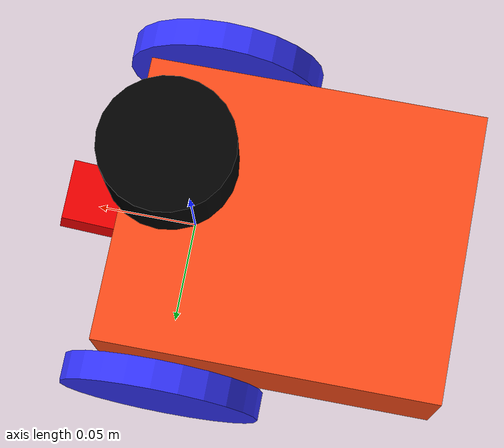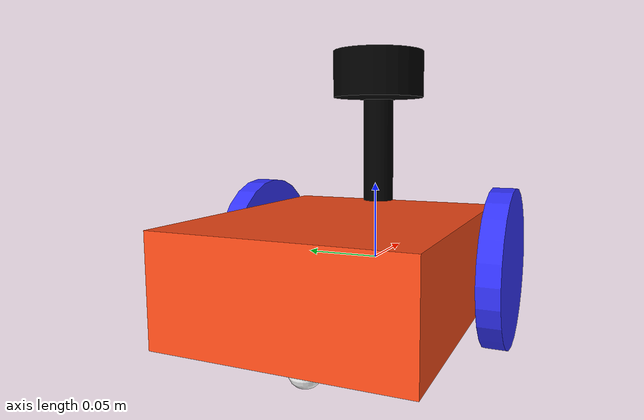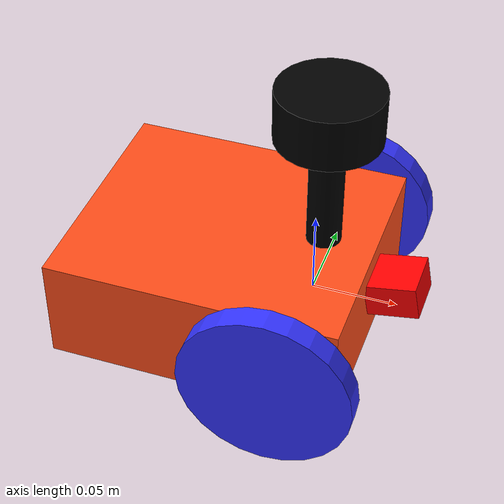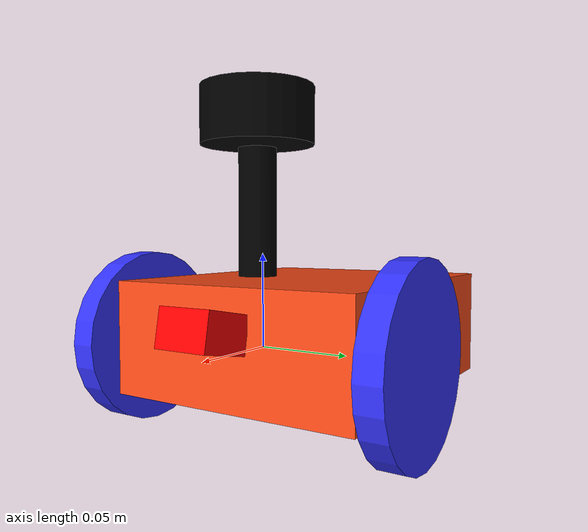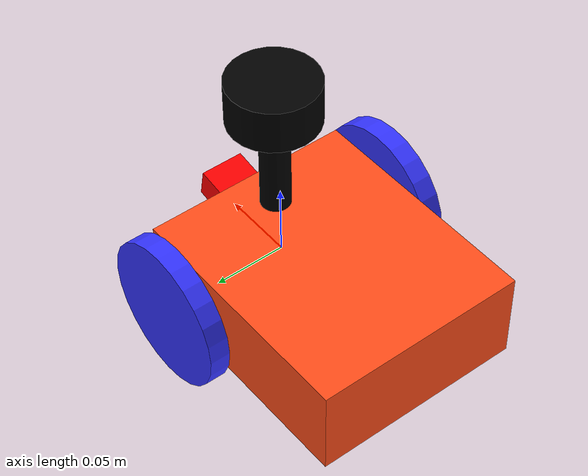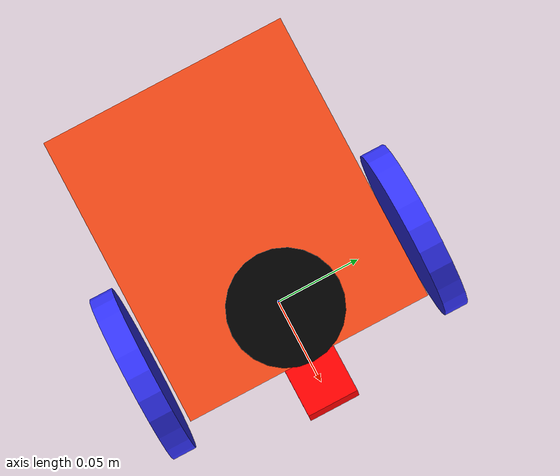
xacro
<?xml version="1.0"?>
<robot xmlns:xacro="http://www.ros.org/wiki/xacro"  name="robot">

    <xacro:arg name="use_ros2_control" default="true"/>
    <xacro:arg name="sim_mode" default="false"/>

    <xacro:include filename="robot_core.xacro" />

    <xacro:if value="$(arg use_ros2_control)">
        <xacro:include filename="ros2_control.xacro" />
    </xacro:if>
    <xacro:unless value="$(arg use_ros2_control)">
        <xacro:include filename="gazebo_control.xacro" />
    </xacro:unless>
    <xacro:include filename="camera.xacro" />
    <xacro:include filename="lidar.xacro" />

</robot>

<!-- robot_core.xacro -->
<robot xmlns:xacro="http://www.ros.org/wiki/xacro" >

    <xacro:include filename="inertial_macros.xacro"/>

    <xacro:property name="chassis_length" value="0.17"/>
    <xacro:property name="chassis_width" value="0.145"/>
    <xacro:property name="chassis_height" value="0.063"/>
    <xacro:property name="chassis_mass" value="1.0"/>
    <xacro:property name="wheel_radius" value="0.05"/>
    <xacro:property name="wheel_thickness" value="0.014"/>
    <xacro:property name="wheel_mass" value="0.05"/>
    <xacro:property name="wheel_offset_x" value="0.035"/>
    <xacro:property name="wheel_offset_y" value="0.085"/>
    <xacro:property name="wheel_offset_z" value="0.028"/>
    <xacro:property name="caster_wheel_radius" value="0.01"/>
    <xacro:property name="caster_wheel_mass" value="0.01"/>
    <xacro:property name="caster_wheel_offset_x" value="0.135"/>
    <xacro:property name="caster_wheel_offset_z" value="${wheel_offset_z - wheel_radius + caster_wheel_radius}"/>

    <material name="white">
        <color rgba="1 1 1 1" />
    </material>

    <material name="orange">
        <color rgba="1 0.3 0.1 1"/>
    </material>

    <material name="blue">
        <color rgba="0.2 0.2 1 1"/>
    </material>

    <material name="black">
        <color rgba="0 0 0 1"/>
    </material>

    <material name="red">
        <color rgba="1 0 0 1"/>
    </material>

    <!-- BASE LINK -->

    <link name="base_link">

    </link>

    <!-- BASE_FOOTPRINT LINK -->

    <joint name="base_footprint_joint" type="fixed">
        <parent link="base_link"/>
        <child link="base_footprint"/>
        <origin xyz="0 0 0" rpy="0 0 0"/>
    </joint>

    <link name="base_footprint">
    </link>

    <!-- CHASSIS LINK -->

    <joint name="chassis_joint" type="fixed">
        <parent link="base_link"/>
        <child link="chassis"/>
        <origin xyz="${wheel_offset_x} 0 ${-wheel_offset_z}"/>
    </joint>

    <link name="chassis">
        <visual>
            <origin xyz="${-chassis_length/2} 0 ${chassis_height/2}"/>
            <geometry>
                <box size="${chassis_length} ${chassis_width} ${chassis_height}"/>
            </geometry>
            <material name="orange"/>
        </visual>
        <collision>
            <origin xyz="${-chassis_length/2} 0 ${chassis_height/2}"/>
            <geometry>
                <box size="${chassis_length} ${chassis_width} ${chassis_height}"/>
            </geometry>
        </collision>
        <xacro:inertial_box mass="${chassis_mass}" x="${chassis_length}" y="${chassis_width}" z="${chassis_height}">
            <origin xyz="${-chassis_length/2} 0 ${chassis_height/2}" rpy="0 0 0"/>
        </xacro:inertial_box>
    </link>

    <gazebo reference="chassis">
        <material>Gazebo/Orange</material>
    </gazebo>

    <!-- LEFT WHEEL LINK -->

    <joint name="left_wheel_joint" type="continuous">
        <parent link="base_link"/>
        <child link="left_wheel"/>
        <origin xyz="0 ${wheel_offset_y} 0" rpy="-${pi/2} 0 0" />
        <axis xyz="0 0 1"/>
    </joint>

    <link name="left_wheel">
        <visual>
            <geometry>
                <cylinder radius="${wheel_radius}" length="${wheel_thickness}"/>
            </geometry>
            <material name="blue"/>
        </visual>
        <collision>
            <geometry>
                <cylinder radius="${wheel_radius}" length="${wheel_thickness}"/>
            </geometry>
        </collision>
        <xacro:inertial_cylinder mass="${wheel_mass}" length="${wheel_thickness}" radius="${wheel_radius}">
            <origin xyz="0 0 0" rpy="0 0 0"/>
        </xacro:inertial_cylinder>
    </link>

    <gazebo reference="left_wheel">
        <material>Gazebo/Blue</material>
    </gazebo>

    <!-- RIGHT WHEEL LINK -->

    <joint name="right_wheel_joint" type="continuous">
        <parent link="base_link"/>
        <child link="right_wheel"/>
        <origin xyz="0 ${-wheel_offset_y} 0" rpy="${pi/2} 0 0" />
        <axis xyz="0 0 -1"/>
    </joint>

    <link name="right_wheel">
        <visual>
            <geometry>
                <cylinder radius="${wheel_radius}" length="${wheel_thickness}"/>
            </geometry>
            <material name="blue"/>
        </visual>
        <collision>
            <geometry>
                <cylinder radius="${wheel_radius}" length="${wheel_thickness}"/>
            </geometry>
        </collision>
        <xacro:inertial_cylinder mass="${wheel_mass}" length="${wheel_thickness}" radius="${wheel_radius}">
            <origin xyz="0 0 0" rpy="0 0 0"/>
        </xacro:inertial_cylinder>
    </link>

    <gazebo reference="right_wheel">
        <material>Gazebo/Blue</material>
    </gazebo>

    <!-- CASTER WHEEL LINK -->

    <joint name="caster_wheel_joint" type="fixed">
        <parent link="chassis"/>
        <child link="caster_wheel"/>
        <origin xyz="${-caster_wheel_offset_x} 0 ${caster_wheel_offset_z}"/>
    </joint>

    <link name="caster_wheel">
        <visual>
            <geometry>
                <sphere radius="${caster_wheel_radius}"/>
            </geometry>
            <material name="white"/>
        </visual>
        <collision>
            <geometry>
                <sphere radius="${caster_wheel_radius}"/>
            </geometry>
        </collision>
        <xacro:inertial_sphere mass="${caster_wheel_mass}" radius="${caster_wheel_radius}">
            <origin xyz="0 0 0" rpy="0 0 0"/>
        </xacro:inertial_sphere>
    </link>

    <gazebo reference="caster_wheel">
        <material>Gazebo/White</material>
        <mu1 value="0.001"/>
        <mu2 value="0.001"/>
    </gazebo>

</robot>

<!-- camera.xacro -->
<robot xmlns:xacro="http://www.ros.org/wiki/xacro" >

    <joint name="camera_joint" type="fixed">
        <parent link="chassis"/>
        <child link="camera_link"/>
        <origin xyz="0 0 0.04" rpy="0 -0.185 0"/>
    </joint>

    <link name="camera_link">
        <visual>
            <origin xyz="0.015 0 0"/>
            <geometry>
                <box size="0.03 0.03 0.02"/>
            </geometry>
            <material name="red"/>
        </visual>
    </link>

    <joint name="camera_optical_joint" type="fixed">
        <parent link="camera_link"/>
        <child link="camera_link_optical"/>
        <origin xyz="0 0 0" rpy="${-pi/2} 0 ${-pi/2}"/>
    </joint>

    <link name="camera_link_optical"></link>

    <xacro:if value="$(arg sim_mode)">
        <gazebo reference="camera_link">
            <material>Gazebo/Red</material>

            <sensor name="camera" type="camera">
                <pose> 0 0 0 0 0 0 </pose>
                <visualize>true</visualize>
                <update_rate>10</update_rate>
                <camera>
                    <horizontal_fov>1.089</horizontal_fov>
                    <image>
                        <format>R8G8B8</format>
                        <width>640</width>
                        <height>480</height>
                    </image>
                    <clip>
                        <near>0.05</near>
                        <far>8.0</far>
                    </clip>
                </camera>
                <plugin name="camera_controller" filename="libgazebo_ros_camera.so">
                    <frame_name>camera_link_optical</frame_name>
                </plugin>
            </sensor>
        </gazebo>
    </xacro:if>
</robot>

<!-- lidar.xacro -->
<robot xmlns:xacro="http://www.ros.org/wiki/xacro" >

    <xacro:property name="lidar_height" value="0.03"/>
    <xacro:property name="lidar_radius" value="0.03"/>
    <xacro:property name="lidar_center_offset" value="0.02"/>
    <xacro:property name="lidar_offset_z" value="0.15"/>

    <joint name="laser_joint" type="fixed">
        <parent link="chassis"/>
        <child link="laser_frame"/>
        <origin xyz="${-lidar_radius} 0 ${lidar_offset_z}" rpy="0 0 0"/>
    </joint>

    <link name="laser_frame">
        <visual>
            <geometry>
                <cylinder radius="${lidar_radius}" length="${lidar_height}"/>
            </geometry>
            <material name="black"/>
        </visual>
        <visual>
            <origin xyz="0 0 -0.05"/>
            <geometry>
                <cylinder radius="0.01" length="${lidar_offset_z - chassis_height - lidar_center_offset}"/>
            </geometry>
            <material name="black"/>
        </visual>
        <collision>
            <geometry>
                <cylinder radius="${lidar_radius}" length="${lidar_height}"/>
            </geometry>
        </collision>
        <xacro:inertial_cylinder mass="0.1"  radius="${lidar_radius}" length="${lidar_height}">
            <origin xyz="0 0 0" rpy="0 0 0"/>
        </xacro:inertial_cylinder>
    </link>

    <gazebo reference="laser_frame">
        <material>Gazebo/Black</material>

        <sensor name="laser" type="ray">
            <pose> 0 0 0 0 0 0 </pose>
            <visualize>false</visualize>
            <update_rate>10</update_rate>
            <ray>
                <scan>
                    <horizontal>
                        <samples>360</samples>
                        <min_angle>-3.14</min_angle>
                        <max_angle>3.14</max_angle>
                    </horizontal>
                </scan>
                <range>
                    <min>0.3</min>
                    <max>12</max>
                </range>
            </ray>
            <plugin name="laser_controller" filename="libgazebo_ros_ray_sensor.so">
                <ros>
                    <argument>~/out:=scan</argument>
                </ros>
                <output_type>sensor_msgs/LaserScan</output_type>
                <frame_name>laser_frame</frame_name>
            </plugin>
        </sensor>
    </gazebo>

</robot>
